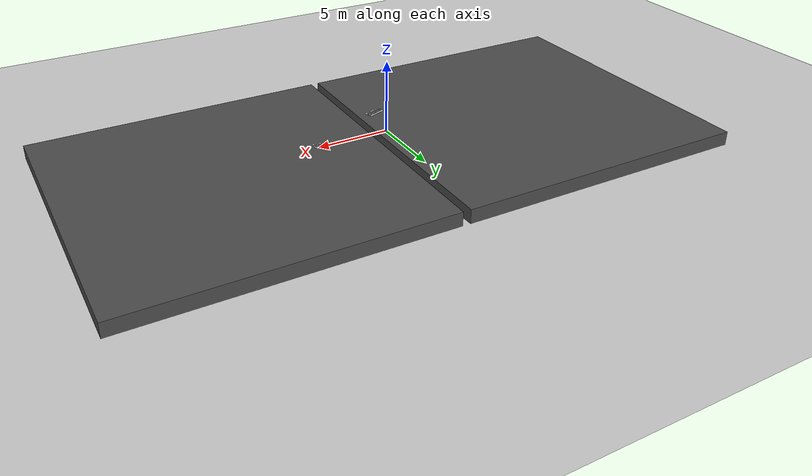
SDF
<sdf version="1.6">
 <world name="default">
  <light name="sun" type="directional">
   <pose>0 0 10 0 -0 0</pose>
   <diffuse>0.8 0.8 0.8 1</diffuse>
   <specular>0.1 0.1 0.1 1</specular>
   <attenuation>
    <range>1000</range>
    <constant>0.9</constant>
    <linear>0.01</linear>
    <quadratic>0.001</quadratic>
   </attenuation>
   <direction>-0.5 0.5 -1</direction>
  </light>
  <model name="ground_plane">
   <static>1</static>
   <link name="link">
    <collision name="collision">
     <geometry><plane><normal>0 0 1</normal><size>100 100</size></plane></geometry>
     <surface><friction><ode><mu>100</mu><mu2>50</mu2></ode></friction></surface>
    </collision>
    <visual name="visual">
     <cast_shadows>0</cast_shadows>
     <geometry><plane><normal>0 0 1</normal><size>100 100</size></plane></geometry>
     <material>
      <script><uri>file://media/materials/scripts/gazebo.material</uri><name>Gazebo/Grey</name></script>
     </material>
    </visual>
   </link>
  </model>
  <gravity>0 0 -9.8</gravity>
  <magnetic_field>6e-06 2.3e-05 -4.2e-05</magnetic_field>
  <atmosphere type="adiabatic"/>
  <physics name="default_physics" default="0" type="ode">
   <max_step_size>0.001</max_step_size>
   <real_time_factor>1</real_time_factor>
   <real_time_update_rate>1000</real_time_update_rate>
  </physics>
  <scene><ambient>0.4 0.4 0.4 1</ambient><background>0.7 0.7 0.7 1</background><shadows>1</shadows></scene>
  <spherical_coordinates>
   <surface_model>EARTH_WGS84</surface_model>
   <latitude_deg>0</latitude_deg>
   <longitude_deg>0</longitude_deg>
   <elevation>0</elevation>
   <heading_deg>0</heading_deg>
  </spherical_coordinates>
  <model name="asphalt_plane">
   <static>1</static>
   <link name="link">
    <collision name="collision">
     <geometry><box><size>20 20 1.4296</size></box></geometry>
     <surface><friction><ode><mu>100</mu><mu2>50</mu2></ode></friction></surface>
    </collision>
    <visual name="visual">
     <cast_shadows>0</cast_shadows>
     <geometry><box><size>20 20 1.4296</size></box></geometry>
     <material>
      <script>
       <uri>model://asphalt_plane/materials/scripts</uri>
       <uri>model://asphalt_plane/materials/textures</uri>
       <name>vrc/asphalt</name>
      </script>
     </material>
    </visual>
   </link>
   <pose>-8.53833 2.29833 0.165376 0 -0 0</pose>
  </model>
  <model name="asphalt_plane_clone">
   <static>1</static>
   <link name="link">
    <collision name="collision">
     <geometry><box><size>20 20 1.06472</size></box></geometry>
     <surface><friction><ode><mu>100</mu><mu2>50</mu2></ode></friction></surface>
    </collision>
    <visual name="visual">
     <cast_shadows>0</cast_shadows>
     <geometry><box><size>20 20 1.06472</size></box></geometry>
     <material>
      <script>
       <uri>model://asphalt_plane/materials/scripts</uri>
       <uri>model://asphalt_plane/materials/textures</uri>
       <name>vrc/asphalt</name>
      </script>
     </material>
    </visual>
   </link>
   <pose>11.9689 2.28539 0.340279 0 -0 0</pose>
  </model>
  <model name="frc2016_roughterrain_1_clone_11_clone_2">
   <static>0</static>
   <link name="link">
    <visual name="platform">
     <pose>0 0 0.08269 0 -0 0</pose>
     <geometry><box><size>1.27 0.5969 0.003175</size></box></geometry>
    </visual>
    <collision name="platform">
     <pose>0 0 0.08269 0 -0 0</pose>
     <geometry><box><size>1.27 0.5969 0.003175</size></box></geometry>
    </collision>
    <visual name="row1_block1_sm">
     <pose>0.51435 0.1143 0.09698 0 -0 0</pose>
     <geometry><box><size>0.0762 0.0762 0.0254</size></box></geometry>
    </visual>
    <collision name="row1_block1_sm">
     <pose>0.51435 0.1143 0.09698 0 -0 0</pose>
     <geometry><box><size>0.0762 0.0762 0.0254</size></box></geometry>
    </collision>
    <visual name="row1_block2_lg">
     <pose>0.40005 0.1143 0.12238 0 -0 0</pose>
     <geometry><box><size>0.0762 0.0762 0.0762</size></box></geometry>
    </visual>
    <collision name="row1_block2_lg">
     <pose>0.40005 0.1143 0.12238 0 -0 0</pose>
     <geometry><box><size>0.0762 0.0762 0.0762</size></box></geometry>
    </collision>
    <visual name="row1_block3_md">
     <pose>0.28575 0.1143 0.10968 0 -0 0</pose>
     <geometry><box><size>0.0762 0.0762 0.0508</size></box></geometry>
    </visual>
    <collision name="row1_block3_md">
     <pose>0.28575 0.1143 0.10968 0 -0 0</pose>
     <geometry><box><size>0.0762 0.0762 0.0508</size></box></geometry>
    </collision>
    <visual name="row1_block4_sm">
     <pose>0.17145 0.1143 0.09698 0 -0 0</pose>
     <geometry><box><size>0.0762 0.0762 0.0254</size></box></geometry>
    </visual>
    <collision name="row1_block4_sm">
     <pose>0.17145 0.1143 0.09698 0 -0 0</pose>
     <geometry><box><size>0.0762 0.0762 0.0254</size></box></geometry>
    </collision>
    <visual name="row1_block5_md">
     <pose>0.05715 0.1143 0.10968 0 -0 0</pose>
     <geometry><box><size>0.0762 0.0762 0.0508</size></box></geometry>
    </visual>
    <collision name="row1_block5_md">
     <pose>0.05715 0.1143 0.10968 0 -0 0</pose>
     <geometry><box><size>0.0762 0.0762 0.0508</size></box></geometry>
    </collision>
    <visual name="row1_block6_lg">
     <pose>-0.05715 0.1143 0.12238 0 -0 0</pose>
     <geometry><box><size>0.0762 0.0762 0.0762</size></box></geometry>
    </visual>
    <collision name="row1_block6_lg">
     <pose>-0.05715 0.1143 0.12238 0 -0 0</pose>
     <geometry><box><size>0.0762 0.0762 0.0762</size></box></geometry>
    </collision>
    <visual name="row1_block7_sm">
     <pose>-0.17145 0.1143 0.09698 0 -0 0</pose>
     <geometry><box><size>0.0762 0.0762 0.0254</size></box></geometry>
    </visual>
    <collision name="row1_block7_sm">
     <pose>-0.17145 0.1143 0.09698 0 -0 0</pose>
     <geometry><box><size>0.0762 0.0762 0.0254</size></box></geometry>
    </collision>
    <visual name="row1_block8_sm">
     <pose>-0.28575 0.1143 0.09698 0 -0 0</pose>
     <geometry><box><size>0.0762 0.0762 0.0254</size></box></geometry>
    </visual>
    <collision name="row1_block8_sm">
     <pose>-0.28575 0.1143 0.09698 0 -0 0</pose>
     <geometry><box><size>0.0762 0.0762 0.0254</size></box></geometry>
    </collision>
    <visual name="row1_block9_md">
     <pose>-0.40005 0.1143 0.10968 0 -0 0</pose>
     <geometry><box><size>0.0762 0.0762 0.0508</size></box></geometry>
    </visual>
    <collision name="row1_block9_md">
     <pose>-0.40005 0.1143 0.10968 0 -0 0</pose>
     <geometry><box><size>0.0762 0.0762 0.0508</size></box></geometry>
    </collision>
    <visual name="row1_block10_lg">
     <pose>-0.51435 0.1143 0.12238 0 -0 0</pose>
     <geometry><box><size>0.0762 0.0762 0.0762</size></box></geometry>
    </visual>
    <collision name="row1_block10_lg">
     <pose>-0.51435 0.1143 0.12238 0 -0 0</pose>
     <geometry><box><size>0.0762 0.0762 0.0762</size></box></geometry>
    </collision>
    <visual name="row2_block1_md">
     <pose>0.5715 0 0.10968 0 -0 0</pose>
     <geometry><box><size>0.0762 0.0762 0.0508</size></box></geometry>
    </visual>
    <collision name="row2_block1_md">
     <pose>0.5715 0 0.10968 0 -0 0</pose>
     <geometry><box><size>0.0762 0.0762 0.0508</size></box></geometry>
    </collision>
    <visual name="row2_block2_sm">
     <pose>0.4572 0 0.09698 0 -0 0</pose>
     <geometry><box><size>0.0762 0.0762 0.0254</size></box></geometry>
    </visual>
    <collision name="row2_block2_sm">
     <pose>0.4572 0 0.09698 0 -0 0</pose>
     <geometry><box><size>0.0762 0.0762 0.0254</size></box></geometry>
    </collision>
    <visual name="row2_block3_lg">
     <pose>0.3429 0 0.12238 0 -0 0</pose>
     <geometry><box><size>0.0762 0.0762 0.0762</size></box></geometry>
    </visual>
    <collision name="row2_block3_lg">
     <pose>0.3429 0 0.12238 0 -0 0</pose>
     <geometry><box><size>0.0762 0.0762 0.0762</size></box></geometry>
    </collision>
    <visual name="row2_block4_md">
     <pose>0.2286 0 0.10968 0 -0 0</pose>
     <geometry><box><size>0.0762 0.0762 0.0508</size></box></geometry>
    </visual>
    <collision name="row2_block4_md">
     <pose>0.2286 0 0.10968 0 -0 0</pose>
     <geometry><box><size>0.0762 0.0762 0.0508</size></box></geometry>
    </collision>
    <visual name="row2_block5_lg">
     <pose>0.1143 0 0.12238 0 -0 0</pose>
     <geometry><box><size>0.0762 0.0762 0.0762</size></box></geometry>
    </visual>
    <collision name="row2_block5_lg">
     <pose>0.1143 0 0.12238 0 -0 0</pose>
     <geometry><box><size>0.0762 0.0762 0.0762</size></box></geometry>
    </collision>
    <visual name="row2_block6_sm">
     <pose>0 0 0.09698 0 -0 0</pose>
     <geometry><box><size>0.0762 0.0762 0.0254</size></box></geometry>
    </visual>
    <collision name="row2_block6_sm">
     <pose>0 0 0.09698 0 -0 0</pose>
     <geometry><box><size>0.0762 0.0762 0.0254</size></box></geometry>
    </collision>
    <visual name="row2_block7_md">
     <pose>-0.1143 0 0.10968 0 -0 0</pose>
     <geometry><box><size>0.0762 0.0762 0.0508</size></box></geometry>
    </visual>
    <collision name="row2_block7_md">
     <pose>-0.1143 0 0.10968 0 -0 0</pose>
     <geometry><box><size>0.0762 0.0762 0.0508</size></box></geometry>
    </collision>
    <visual name="row2_block8_lg">
     <pose>-0.2286 0 0.12238 0 -0 0</pose>
     <geometry><box><size>0.0762 0.0762 0.0762</size></box></geometry>
    </visual>
    <collision name="row2_block8_lg">
     <pose>-0.2286 0 0.12238 0 -0 0</pose>
     <geometry><box><size>0.0762 0.0762 0.0762</size></box></geometry>
    </collision>
    <visual name="row2_block9_sm">
     <pose>-0.3429 0 0.09698 0 -0 0</pose>
     <geometry><box><size>0.0762 0.0762 0.0254</size></box></geometry>
    </visual>
    <collision name="row2_block9_sm">
     <pose>-0.3429 0 0.09698 0 -0 0</pose>
     <geometry><box><size>0.0762 0.0762 0.0254</size></box></geometry>
    </collision>
    <visual name="row2_block10_lg">
     <pose>-0.4572 0 0.12238 0 -0 0</pose>
     <geometry><box><size>0.0762 0.0762 0.0762</size></box></geometry>
    </visual>
    <collision name="row2_block10_lg">
     <pose>-0.4572 0 0.12238 0 -0 0</pose>
     <geometry><box><size>0.0762 0.0762 0.0762</size></box></geometry>
    </collision>
    <visual name="row2_block11_md">
     <pose>-0.5715 0 0.10968 0 -0 0</pose>
     <geometry><box><size>0.0762 0.0762 0.0508</size></box></geometry>
    </visual>
    <collision name="row2_block11_md">
     <pose>-0.5715 0 0.10968 0 -0 0</pose>
     <geometry><box><size>0.0762 0.0762 0.0508</size></box></geometry>
    </collision>
    <visual name="row3_block1_lg">
     <pose>0.51435 -0.1143 0.12238 0 -0 0</pose>
     <geometry><box><size>0.0762 0.0762 0.0762</size></box></geometry>
    </visual>
    <collision name="row3_block1_lg">
     <pose>0.51435 -0.1143 0.12238 0 -0 0</pose>
     <geometry><box><size>0.0762 0.0762 0.0762</size></box></geometry>
    </collision>
    <visual name="row3_block2_md">
     <pose>0.40005 -0.1143 0.10968 0 -0 0</pose>
     <geometry><box><size>0.0762 0.0762 0.0508</size></box></geometry>
    </visual>
    <collision name="row3_block2_md">
     <pose>0.40005 -0.1143 0.10968 0 -0 0</pose>
     <geometry><box><size>0.0762 0.0762 0.0508</size></box></geometry>
    </collision>
    <visual name="row3_block3_lg">
     <pose>0.28575 -0.1143 0.12238 0 -0 0</pose>
     <geometry><box><size>0.0762 0.0762 0.0762</size></box></geometry>
    </visual>
    <collision name="row3_block3_lg">
     <pose>0.28575 -0.1143 0.12238 0 -0 0</pose>
     <geometry><box><size>0.0762 0.0762 0.0762</size></box></geometry>
    </collision>
    <visual name="row3_block4_sm">
     <pose>0.17145 -0.1143 0.09698 0 -0 0</pose>
     <geometry><box><size>0.0762 0.0762 0.0254</size></box></geometry>
    </visual>
    <collision name="row3_block4_sm">
     <pose>0.17145 -0.1143 0.09698 0 -0 0</pose>
     <geometry><box><size>0.0762 0.0762 0.0254</size></box></geometry>
    </collision>
    <visual name="row3_block5_md">
     <pose>0.05715 -0.1143 0.10968 0 -0 0</pose>
     <geometry><box><size>0.0762 0.0762 0.0508</size></box></geometry>
    </visual>
    <collision name="row3_block5_md">
     <pose>0.05715 -0.1143 0.10968 0 -0 0</pose>
     <geometry><box><size>0.0762 0.0762 0.0508</size></box></geometry>
    </collision>
    <visual name="row3_block6_md">
     <pose>-0.05715 -0.1143 0.10968 0 -0 0</pose>
     <geometry><box><size>0.0762 0.0762 0.0508</size></box></geometry>
    </visual>
    <collision name="row3_block6_md">
     <pose>-0.05715 -0.1143 0.10968 0 -0 0</pose>
     <geometry><box><size>0.0762 0.0762 0.0508</size></box></geometry>
    </collision>
    <visual name="row3_block7_lg">
     <pose>-0.17145 -0.1143 0.12238 0 -0 0</pose>
     <geometry><box><size>0.0762 0.0762 0.0762</size></box></geometry>
    </visual>
    <collision name="row3_block7_lg">
     <pose>-0.17145 -0.1143 0.12238 0 -0 0</pose>
     <geometry><box><size>0.0762 0.0762 0.0762</size></box></geometry>
    </collision>
    <visual name="row3_block8_sm">
     <pose>-0.28575 -0.1143 0.09698 0 -0 0</pose>
     <geometry><box><size>0.0762 0.0762 0.0254</size></box></geometry>
    </visual>
    <collision name="row3_block8_sm">
     <pose>-0.28575 -0.1143 0.09698 0 -0 0</pose>
     <geometry><box><size>0.0762 0.0762 0.0254</size></box></geometry>
    </collision>
    <visual name="row3_block9_md">
     <pose>-0.40005 -0.1143 0.10968 0 -0 0</pose>
     <geometry><box><size>0.0762 0.0762 0.0508</size></box></geometry>
    </visual>
    <collision name="row3_block9_md">
     <pose>-0.40005 -0.1143 0.10968 0 -0 0</pose>
     <geometry><box><size>0.0762 0.0762 0.0508</size></box></geometry>
    </collision>
    <visual name="row3_block10_sm">
     <pose>-0.51435 -0.1143 0.09698 0 -0 0</pose>
     <geometry><box><size>0.0762 0.0762 0.0254</size></box></geometry>
    </visual>
    <collision name="row3_block10_sm">
     <pose>-0.51435 -0.1143 0.09698 0 -0 0</pose>
     <geometry><box><size>0.0762 0.0762 0.0254</size></box></geometry>
    </collision>
    <inertial>
     <inertia><ixx>1</ixx><ixy>0</ixy><ixz>0</ixz><iyy>1</iyy><iyz>0</iyz><izz>1</izz></inertia>
     <mass>1</mass>
    </inertial>
   </link>
   <pose>0.155418 -1.40195 0.799073 -2e-06 0 0.330572</pose>
  </model>
  <model name="frc2016_roughterrain_1_clone_11_clone_8">
   <static>0</static>
   <link name="link">
    <visual name="platform">
     <pose>0 0 0.08269 0 -0 0</pose>
     <geometry><box><size>1.27 0.5969 0.003175</size></box></geometry>
    </visual>
    <collision name="platform">
     <pose>0 0 0.08269 0 -0 0</pose>
     <geometry><box><size>1.27 0.5969 0.003175</size></box></geometry>
    </collision>
    <visual name="row1_block1_sm">
     <pose>0.51435 0.1143 0.09698 0 -0 0</pose>
     <geometry><box><size>0.0762 0.0762 0.0254</size></box></geometry>
    </visual>
    <collision name="row1_block1_sm">
     <pose>0.51435 0.1143 0.09698 0 -0 0</pose>
     <geometry><box><size>0.0762 0.0762 0.0254</size></box></geometry>
    </collision>
    <visual name="row1_block2_lg">
     <pose>0.40005 0.1143 0.12238 0 -0 0</pose>
     <geometry><box><size>0.0762 0.0762 0.0762</size></box></geometry>
    </visual>
    <collision name="row1_block2_lg">
     <pose>0.40005 0.1143 0.12238 0 -0 0</pose>
     <geometry><box><size>0.0762 0.0762 0.0762</size></box></geometry>
    </collision>
    <visual name="row1_block3_md">
     <pose>0.28575 0.1143 0.10968 0 -0 0</pose>
     <geometry><box><size>0.0762 0.0762 0.0508</size></box></geometry>
    </visual>
    <collision name="row1_block3_md">
     <pose>0.28575 0.1143 0.10968 0 -0 0</pose>
     <geometry><box><size>0.0762 0.0762 0.0508</size></box></geometry>
    </collision>
    <visual name="row1_block4_sm">
     <pose>0.17145 0.1143 0.09698 0 -0 0</pose>
     <geometry><box><size>0.0762 0.0762 0.0254</size></box></geometry>
    </visual>
    <collision name="row1_block4_sm">
     <pose>0.17145 0.1143 0.09698 0 -0 0</pose>
     <geometry><box><size>0.0762 0.0762 0.0254</size></box></geometry>
    </collision>
    <visual name="row1_block5_md">
     <pose>0.05715 0.1143 0.10968 0 -0 0</pose>
     <geometry><box><size>0.0762 0.0762 0.0508</size></box></geometry>
    </visual>
    <collision name="row1_block5_md">
     <pose>0.05715 0.1143 0.10968 0 -0 0</pose>
     <geometry><box><size>0.0762 0.0762 0.0508</size></box></geometry>
    </collision>
    <visual name="row1_block6_lg">
     <pose>-0.05715 0.1143 0.12238 0 -0 0</pose>
     <geometry><box><size>0.0762 0.0762 0.0762</size></box></geometry>
    </visual>
    <collision name="row1_block6_lg">
     <pose>-0.05715 0.1143 0.12238 0 -0 0</pose>
     <geometry><box><size>0.0762 0.0762 0.0762</size></box></geometry>
    </collision>
    <visual name="row1_block7_sm">
     <pose>-0.17145 0.1143 0.09698 0 -0 0</pose>
     <geometry><box><size>0.0762 0.0762 0.0254</size></box></geometry>
    </visual>
    <collision name="row1_block7_sm">
     <pose>-0.17145 0.1143 0.09698 0 -0 0</pose>
     <geometry><box><size>0.0762 0.0762 0.0254</size></box></geometry>
    </collision>
    <visual name="row1_block8_sm">
     <pose>-0.28575 0.1143 0.09698 0 -0 0</pose>
     <geometry><box><size>0.0762 0.0762 0.0254</size></box></geometry>
    </visual>
    <collision name="row1_block8_sm">
     <pose>-0.28575 0.1143 0.09698 0 -0 0</pose>
     <geometry><box><size>0.0762 0.0762 0.0254</size></box></geometry>
    </collision>
    <visual name="row1_block9_md">
     <pose>-0.40005 0.1143 0.10968 0 -0 0</pose>
     <geometry><box><size>0.0762 0.0762 0.0508</size></box></geometry>
    </visual>
    <collision name="row1_block9_md">
     <pose>-0.40005 0.1143 0.10968 0 -0 0</pose>
     <geometry><box><size>0.0762 0.0762 0.0508</size></box></geometry>
    </collision>
    <visual name="row1_block10_lg">
     <pose>-0.51435 0.1143 0.12238 0 -0 0</pose>
     <geometry><box><size>0.0762 0.0762 0.0762</size></box></geometry>
    </visual>
    <collision name="row1_block10_lg">
     <pose>-0.51435 0.1143 0.12238 0 -0 0</pose>
     <geometry><box><size>0.0762 0.0762 0.0762</size></box></geometry>
    </collision>
    <visual name="row2_block1_md">
     <pose>0.5715 0 0.10968 0 -0 0</pose>
     <geometry><box><size>0.0762 0.0762 0.0508</size></box></geometry>
    </visual>
    <collision name="row2_block1_md">
     <pose>0.5715 0 0.10968 0 -0 0</pose>
     <geometry><box><size>0.0762 0.0762 0.0508</size></box></geometry>
    </collision>
    <visual name="row2_block2_sm">
     <pose>0.4572 0 0.09698 0 -0 0</pose>
     <geometry><box><size>0.0762 0.0762 0.0254</size></box></geometry>
    </visual>
    <collision name="row2_block2_sm">
     <pose>0.4572 0 0.09698 0 -0 0</pose>
     <geometry><box><size>0.0762 0.0762 0.0254</size></box></geometry>
    </collision>
    <visual name="row2_block3_lg">
     <pose>0.3429 0 0.12238 0 -0 0</pose>
     <geometry><box><size>0.0762 0.0762 0.0762</size></box></geometry>
    </visual>
    <collision name="row2_block3_lg">
     <pose>0.3429 0 0.12238 0 -0 0</pose>
     <geometry><box><size>0.0762 0.0762 0.0762</size></box></geometry>
    </collision>
    <visual name="row2_block4_md">
     <pose>0.2286 0 0.10968 0 -0 0</pose>
     <geometry><box><size>0.0762 0.0762 0.0508</size></box></geometry>
    </visual>
    <collision name="row2_block4_md">
     <pose>0.2286 0 0.10968 0 -0 0</pose>
     <geometry><box><size>0.0762 0.0762 0.0508</size></box></geometry>
    </collision>
    <visual name="row2_block5_lg">
     <pose>0.1143 0 0.12238 0 -0 0</pose>
     <geometry><box><size>0.0762 0.0762 0.0762</size></box></geometry>
    </visual>
    <collision name="row2_block5_lg">
     <pose>0.1143 0 0.12238 0 -0 0</pose>
     <geometry><box><size>0.0762 0.0762 0.0762</size></box></geometry>
    </collision>
    <visual name="row2_block6_sm">
     <pose>0 0 0.09698 0 -0 0</pose>
     <geometry><box><size>0.0762 0.0762 0.0254</size></box></geometry>
    </visual>
    <collision name="row2_block6_sm">
     <pose>0 0 0.09698 0 -0 0</pose>
     <geometry><box><size>0.0762 0.0762 0.0254</size></box></geometry>
    </collision>
    <visual name="row2_block7_md">
     <pose>-0.1143 0 0.10968 0 -0 0</pose>
     <geometry><box><size>0.0762 0.0762 0.0508</size></box></geometry>
    </visual>
    <collision name="row2_block7_md">
     <pose>-0.1143 0 0.10968 0 -0 0</pose>
     <geometry><box><size>0.0762 0.0762 0.0508</size></box></geometry>
    </collision>
    <visual name="row2_block8_lg">
     <pose>-0.2286 0 0.12238 0 -0 0</pose>
     <geometry><box><size>0.0762 0.0762 0.0762</size></box></geometry>
    </visual>
    <collision name="row2_block8_lg">
     <pose>-0.2286 0 0.12238 0 -0 0</pose>
     <geometry><box><size>0.0762 0.0762 0.0762</size></box></geometry>
    </collision>
    <visual name="row2_block9_sm">
     <pose>-0.3429 0 0.09698 0 -0 0</pose>
     <geometry><box><size>0.0762 0.0762 0.0254</size></box></geometry>
    </visual>
    <collision name="row2_block9_sm">
     <pose>-0.3429 0 0.09698 0 -0 0</pose>
     <geometry><box><size>0.0762 0.0762 0.0254</size></box></geometry>
    </collision>
    <visual name="row2_block10_lg">
     <pose>-0.4572 0 0.12238 0 -0 0</pose>
     <geometry><box><size>0.0762 0.0762 0.0762</size></box></geometry>
    </visual>
    <collision name="row2_block10_lg">
     <pose>-0.4572 0 0.12238 0 -0 0</pose>
     <geometry><box><size>0.0762 0.0762 0.0762</size></box></geometry>
    </collision>
    <visual name="row2_block11_md">
     <pose>-0.5715 0 0.10968 0 -0 0</pose>
     <geometry><box><size>0.0762 0.0762 0.0508</size></box></geometry>
    </visual>
    <collision name="row2_block11_md">
     <pose>-0.5715 0 0.10968 0 -0 0</pose>
     <geometry><box><size>0.0762 0.0762 0.0508</size></box></geometry>
    </collision>
    <visual name="row3_block1_lg">
     <pose>0.51435 -0.1143 0.12238 0 -0 0</pose>
     <geometry><box><size>0.0762 0.0762 0.0762</size></box></geometry>
    </visual>
    <collision name="row3_block1_lg">
     <pose>0.51435 -0.1143 0.12238 0 -0 0</pose>
     <geometry><box><size>0.0762 0.0762 0.0762</size></box></geometry>
    </collision>
    <visual name="row3_block2_md">
     <pose>0.40005 -0.1143 0.10968 0 -0 0</pose>
     <geometry><box><size>0.0762 0.0762 0.0508</size></box></geometry>
    </visual>
    <collision name="row3_block2_md">
     <pose>0.40005 -0.1143 0.10968 0 -0 0</pose>
     <geometry><box><size>0.0762 0.0762 0.0508</size></box></geometry>
    </collision>
    <visual name="row3_block3_lg">
     <pose>0.28575 -0.1143 0.12238 0 -0 0</pose>
     <geometry><box><size>0.0762 0.0762 0.0762</size></box></geometry>
    </visual>
    <collision name="row3_block3_lg">
     <pose>0.28575 -0.1143 0.12238 0 -0 0</pose>
     <geometry><box><size>0.0762 0.0762 0.0762</size></box></geometry>
    </collision>
    <visual name="row3_block4_sm">
     <pose>0.17145 -0.1143 0.09698 0 -0 0</pose>
     <geometry><box><size>0.0762 0.0762 0.0254</size></box></geometry>
    </visual>
    <collision name="row3_block4_sm">
     <pose>0.17145 -0.1143 0.09698 0 -0 0</pose>
     <geometry><box><size>0.0762 0.0762 0.0254</size></box></geometry>
    </collision>
    <visual name="row3_block5_md">
     <pose>0.05715 -0.1143 0.10968 0 -0 0</pose>
     <geometry><box><size>0.0762 0.0762 0.0508</size></box></geometry>
    </visual>
    <collision name="row3_block5_md">
     <pose>0.05715 -0.1143 0.10968 0 -0 0</pose>
     <geometry><box><size>0.0762 0.0762 0.0508</size></box></geometry>
    </collision>
    <visual name="row3_block6_md">
     <pose>-0.05715 -0.1143 0.10968 0 -0 0</pose>
     <geometry><box><size>0.0762 0.0762 0.0508</size></box></geometry>
    </visual>
    <collision name="row3_block6_md">
     <pose>-0.05715 -0.1143 0.10968 0 -0 0</pose>
     <geometry><box><size>0.0762 0.0762 0.0508</size></box></geometry>
    </collision>
    <visual name="row3_block7_lg">
     <pose>-0.17145 -0.1143 0.12238 0 -0 0</pose>
     <geometry><box><size>0.0762 0.0762 0.0762</size></box></geometry>
    </visual>
    <collision name="row3_block7_lg">
     <pose>-0.17145 -0.1143 0.12238 0 -0 0</pose>
     <geometry><box><size>0.0762 0.0762 0.0762</size></box></geometry>
    </collision>
    <visual name="row3_block8_sm">
     <pose>-0.28575 -0.1143 0.09698 0 -0 0</pose>
     <geometry><box><size>0.0762 0.0762 0.0254</size></box></geometry>
    </visual>
    <collision name="row3_block8_sm">
     <pose>-0.28575 -0.1143 0.09698 0 -0 0</pose>
     <geometry><box><size>0.0762 0.0762 0.0254</size></box></geometry>
    </collision>
    <visual name="row3_block9_md">
     <pose>-0.40005 -0.1143 0.10968 0 -0 0</pose>
     <geometry><box><size>0.0762 0.0762 0.0508</size></box></geometry>
    </visual>
    <collision name="row3_block9_md">
     <pose>-0.40005 -0.1143 0.10968 0 -0 0</pose>
     <geometry><box><size>0.0762 0.0762 0.0508</size></box></geometry>
    </collision>
    <visual name="row3_block10_sm">
     <pose>-0.51435 -0.1143 0.09698 0 -0 0</pose>
     <geometry><box><size>0.0762 0.0762 0.0254</size></box></geometry>
    </visual>
    <collision name="row3_block10_sm">
     <pose>-0.51435 -0.1143 0.09698 0 -0 0</pose>
     <geometry><box><size>0.0762 0.0762 0.0254</size></box></geometry>
    </collision>
    <inertial>
     <inertia><ixx>1</ixx><ixy>0</ixy><ixz>0</ixz><iyy>1</iyy><iyz>0</iyz><izz>1</izz></inertia>
     <mass>1</mass>
    </inertial>
   </link>
   <pose>5.28377 1.23825 0.791536 -2e-06 -0 -0.144359</pose>
  </model>
 </world>
</sdf>
